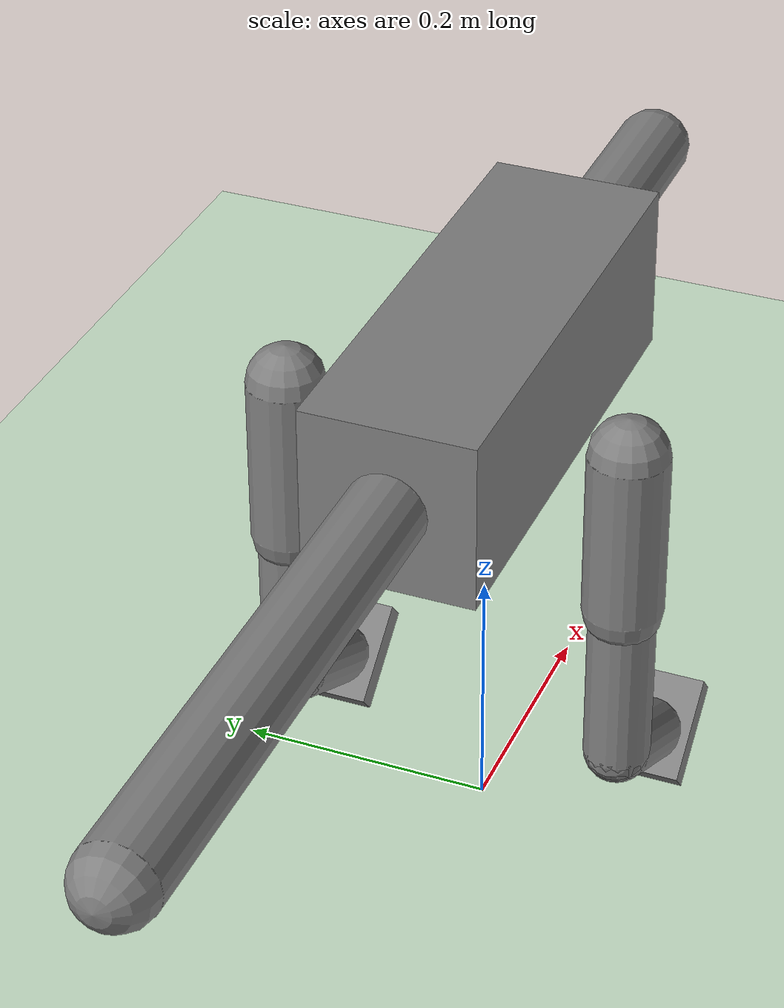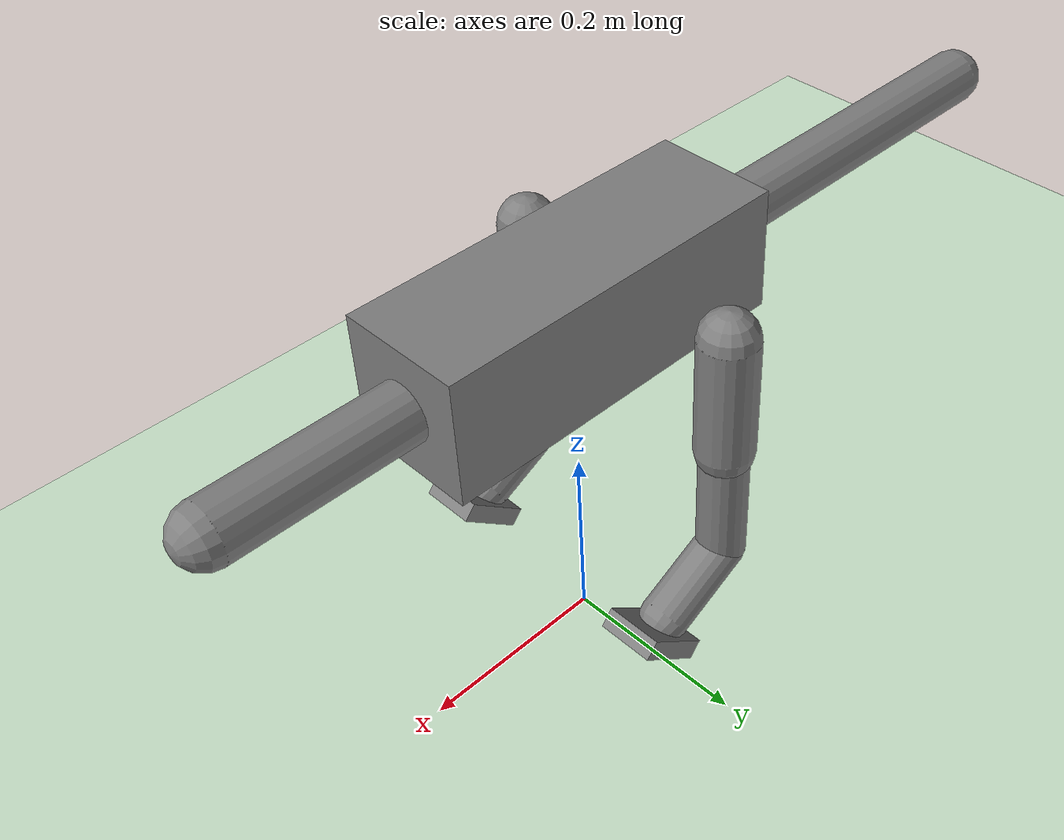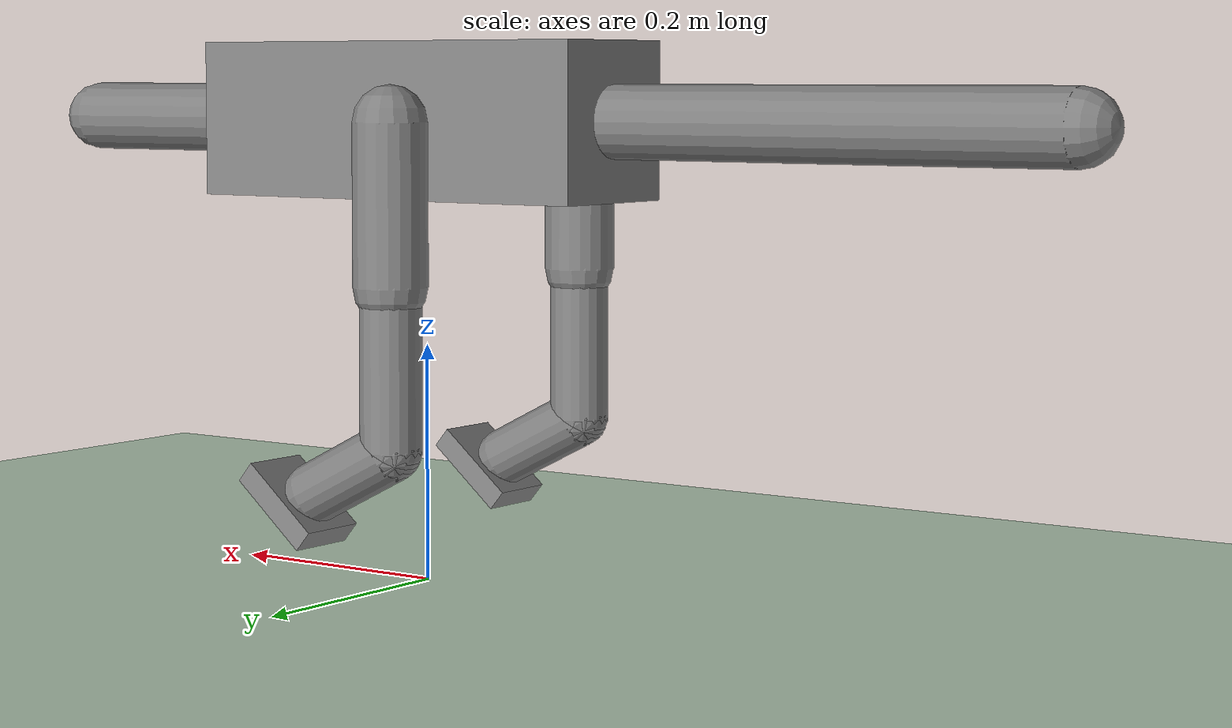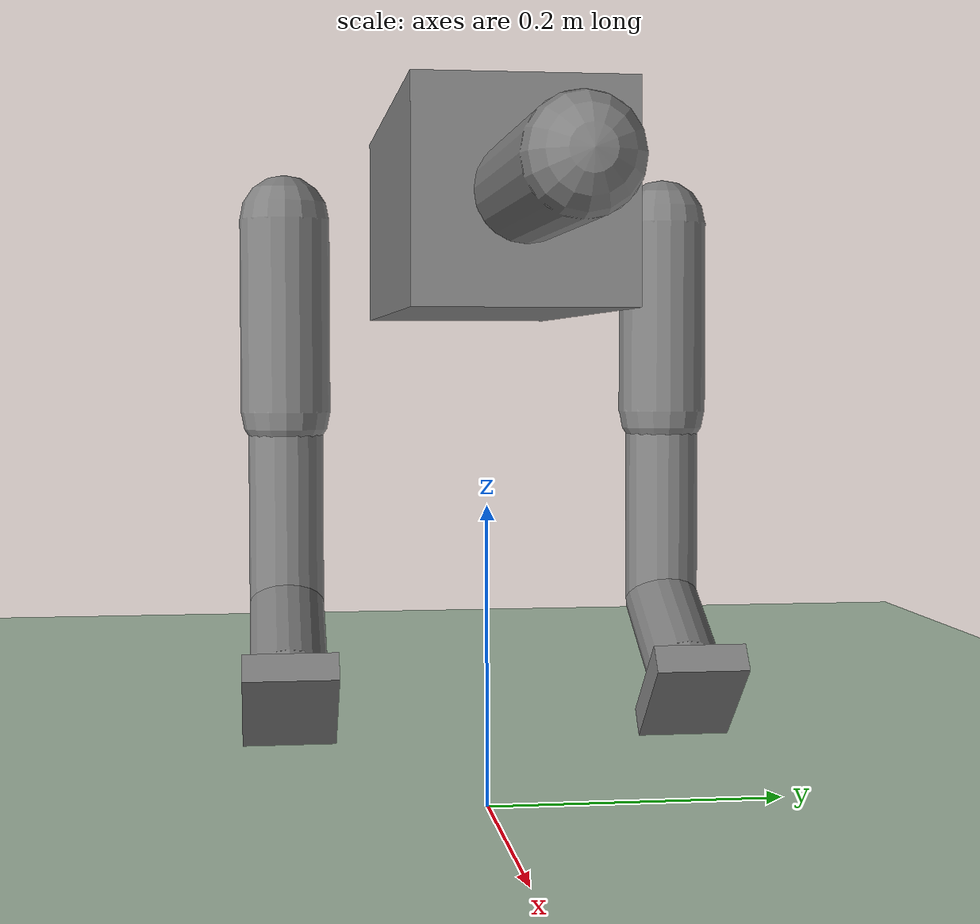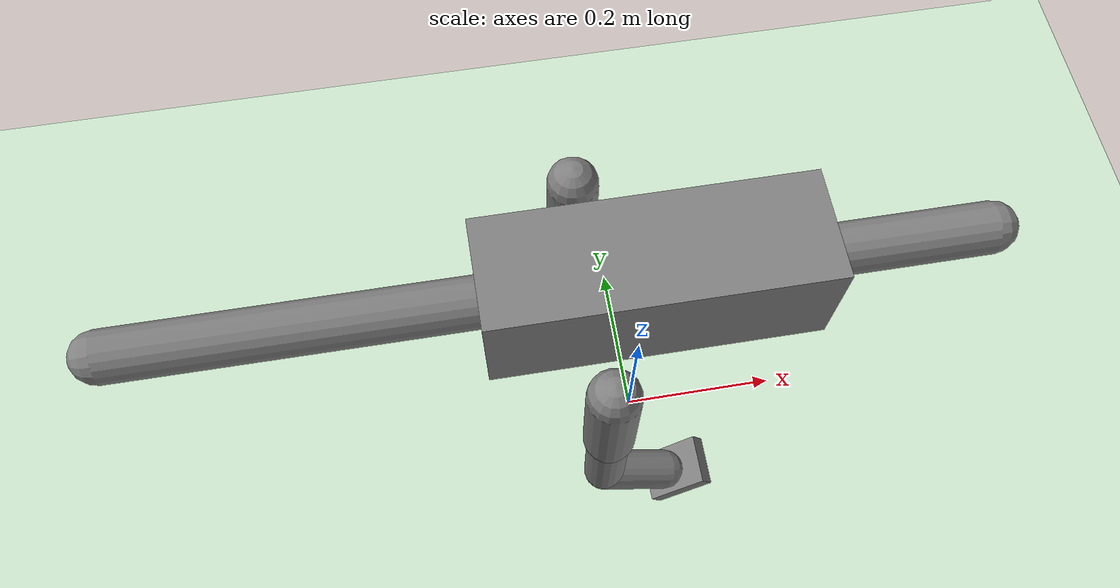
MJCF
<mujoco model="bird_biped">
  <compiler angle="radian" meshdir="meshes/"/>
  <option timestep="0.002" gravity="0 0 -9.81"/>

  <default>
    <joint damping="0.5" armature="0.01"/>
    <geom friction="1.2 0.1 0.1" condim="3"/>
  </default>

  <worldbody>
    <geom name="floor" type="plane" size="10 10 0.1" rgba="0.8 0.9 0.8 1"/>

    <body name="body" pos="0 0 0.39">
      <freejoint name="root"/>
      <geom name="body_geom"  type="box" size= "0.19 0.065 0.065" mass="1.5"/>
      <site name="imu_site" pos="0 0 0"/>

      <body name="rleg1" pos="-0.065 0.13 0">
        <joint name="right_hip" type="hinge"
          axis="0 -1 0"
          range="-0.5 1.3"
          armature="0.0245"
          damping="0.1"
          frictionloss="0.2"
         />
        <geom type="capsule" fromto="0 0 0 0 0 -0.13" size="0.03" mass="0.5"/>

        <body name="rleg2" pos="0 0 -0.13">
          <joint name="right_knee" type="hinge"
          axis="0 1 0"
          range="-0.2 2"
          armature="0.0245"
          damping="0.1"
          frictionloss="0.2"
          />
          <geom type="capsule" fromto="0 0 0 0 0 -0.13" size="0.025" mass="0.3"/>

          <body name="rleg3" pos="0 0 -0.13" euler = "0 -1.1 0">
            <joint name="right_feet" type="hinge" axis="0 1 0"
            limited="true" range="-0.5 0.8"
            stiffness="20" damping="0.2" springref="0.2"/>
            <geom type="capsule" fromto="0 0 0 0 0 -0.09" size="0.025" mass="0.1"/>

              <body name="r_paw" pos="0 0 -0.11" euler = "0 0.4 0">
                <geom type="box" size= "0.04 0.03 0.01" mass="0.065"/>
                <site name="r_foot_site" type="box" size="0.04 0.03 0.01" group="5"/>
                <joint name="right_paw" type="hinge" axis="0 1 0"
                limited="true" range="-0.5 1"
                stiffness="20"/>
              </body>

          </body>

        </body>

      </body>

      <body name="lleg1" pos="-0.065 -0.13 0">
        <joint name="left_hip" type="hinge"
          axis="0 -1 0"
          range="-0.5 1.3"
          armature="0.0245"
          damping="0.1"
          frictionloss="0.2"
         />
        <geom type="capsule" fromto="0 0 0 0 0 -0.13" size="0.03" mass="0.5"/>

        <body name="lleg2" pos="0 0 -0.13">
          <joint name="left_knee" type="hinge"
          axis="0 1 0"
          range="-0.2 2"
          armature="0.0245"
          damping="0.1"
          frictionloss="0.2"
          />

          <geom type="capsule" fromto="0 0 0 0 0 -0.13" size="0.025" mass="0.3"/>

          <body name="lleg3" pos="0 0 -0.13" euler = "0 -1.1 0">
            <joint name="left_feet" type="hinge" axis="0 1 0"
            limited="true" range="-0.5 0.8"
            stiffness="20" damping="0.2" springref="0.2"/>
            <geom type="capsule" fromto="0 0 0 0 0 -0.09" size="0.025" mass="0.1"/>

            <body name="l_paw" pos="0 0 -0.11" euler = "0 0.4 0">
                <geom type="box" size= "0.04 0.03 0.01" mass="0.065"/>
                <site name="l_foot_site" type="box" size="0.04 0.03 0.01" group="5"/>
                <joint name="left_paw" type="hinge" axis="0 1 0"
                limited="true" range="-0.5 1"
                stiffness="20"/>
              </body>

          </body>

        </body>

      </body>

      <body name="tail" pos="-0.19 0 0">
        <joint name="tail_body" type="hinge" axis="0 0 1" range="-0.6 0.6"/>
        <geom name="tail_geom" type="capsule" fromto="0 0 0 -0.40 0 0" size="0.03" mass="0.4"/>
      </body>

      <body name="neck" pos="0.19 0 0">
        <joint name="neck_body" type="hinge" axis="0 -1 0" range="0 1.57"/>
        <geom name="neck_geom" type="capsule" fromto="0 0 0 0.19 0 0" size="0.03" mass="0.5"/>
      </body>

    </body>
  </worldbody>

  <actuator>
    <!-- LEGS: BLDC + 10:1 gearbox with 30ms 1st-order filter lag -->
    <general name="act_l_hip" joint="left_hip"
             dyntype="filter" dynprm="0.03"
             gaintype="fixed" gainprm="30"
             biastype="affine" biasprm="0 -30 -2"
             ctrlrange="-1 1.3" forcerange="-18 18"/>

    <general name="act_l_knee" joint="left_knee"
             dyntype="filter" dynprm="0.03"
             gaintype="fixed" gainprm="30"
             biastype="affine" biasprm="0 -30 -2"
             ctrlrange="-0.7 2" forcerange="-18 18"/>

    <general name="act_r_hip" joint="right_hip"
             dyntype="filter" dynprm="0.03"
             gaintype="fixed" gainprm="30"
             biastype="affine" biasprm="0 -30 -2"
             ctrlrange="-1 1.3" forcerange="-18 18"/>

    <general name="act_r_knee" joint="right_knee"
             dyntype="filter" dynprm="0.03"
             gaintype="fixed" gainprm="30"
             biastype="affine" biasprm="0 -30 -2"
             ctrlrange="-0.7 2" forcerange="-18 18"/>

    <!-- TAIL / NECK: Slower servo dynamics (tau = 60ms) -->
    <general name="act_tail" joint="tail_body"
             dyntype="filter" dynprm="0.06"
             gaintype="fixed" gainprm="10"
             biastype="affine" biasprm="0 -10 -1"
             ctrlrange="-0.6 0.6" forcerange="-8 8"/>

    <general name="act_neck" joint="neck_body"
             dyntype="filter" dynprm="0.06"
             gaintype="fixed" gainprm="10"
             biastype="affine" biasprm="0 -10 -1"
             ctrlrange="0 1.57" forcerange="-8 8"/>
  </actuator>

  <keyframe>
     <key name="stand" qpos="0 0 0.5 1 0 0 0  0.8 1.3 0.0 0.0  0.8 1.3 0.0 0.0  0 0.7"/>
  </keyframe>

  <sensor>
    <!-- IMU Sensors attached to the torso site -->
    <accelerometer name="imu_accel" site="imu_site"/>
    <gyro name="imu_gyro" site="imu_site"/>
    <framequat name="imu_quat" objtype="site" objname="imu_site"/>

    <!-- Joint Encoders (Position & Velocity) -->
    <jointpos name="jp_l_hip" joint="left_hip"/>
    <jointvel name="jv_l_hip" joint="left_hip"/>

    <jointpos name="jp_l_knee" joint="left_knee"/>
    <jointvel name="jv_l_knee" joint="left_knee"/>

    <jointpos name="jp_r_hip" joint="right_hip"/>
    <jointvel name="jv_r_hip" joint="right_hip"/>

    <jointpos name="jp_r_knee" joint="right_knee"/>
    <jointvel name="jv_r_knee" joint="right_knee"/>

    <jointpos name="jp_tail" joint="tail_body"/>
    <jointvel name="jv_tail" joint="tail_body"/>
    <jointpos name="jp_neck" joint="neck_body"/>
    <jointvel name="jv_neck" joint="neck_body"/>

    <!-- Foot contact (stance/swing detection) -->
    <contact name="l_foot_contact" site="l_foot_site"/>
    <contact name="r_foot_contact" site="r_foot_site"/>

    <!-- Foot world position: framepos = [x y z ...] and framevel = [lin v (3) ...] -->
    <framepos name="fp_lfoot" objtype="site" objname="l_foot_site"/>
    <framepos name="fp_rfoot" objtype="site" objname="r_foot_site"/>
    <framelinvel name="fv_lfoot" objtype="site" objname="l_foot_site"/>
    <framelinvel name="fv_rfoot" objtype="site" objname="r_foot_site"/>
  </sensor>
</mujoco>
